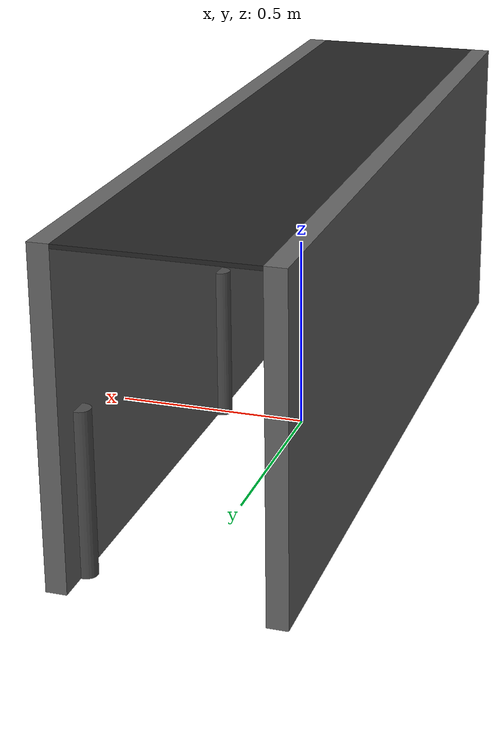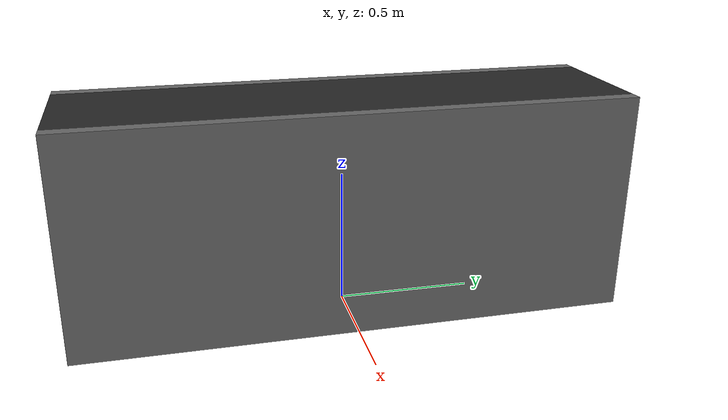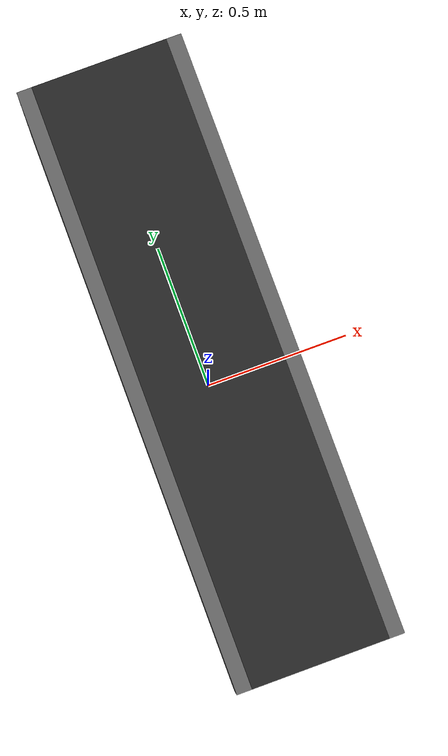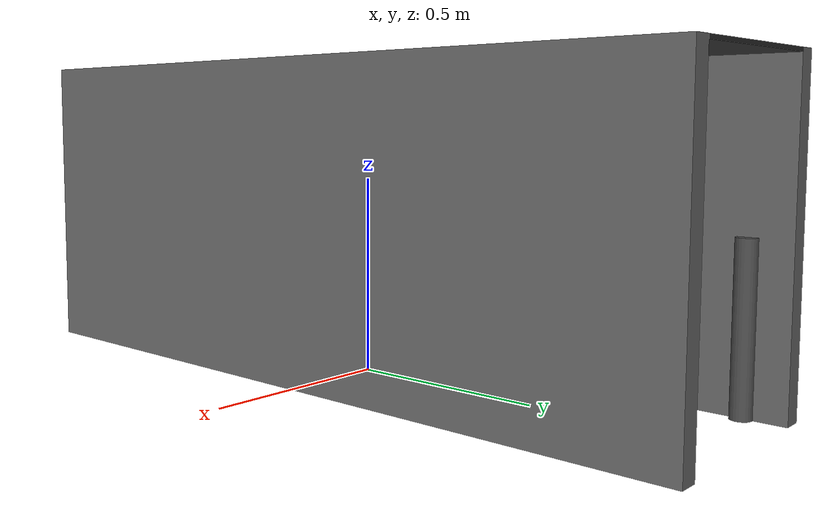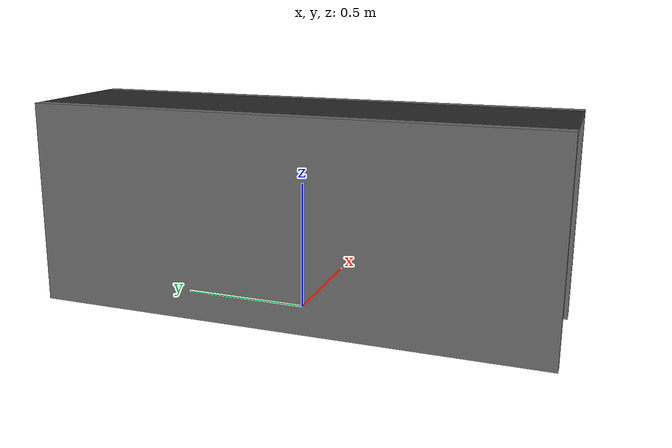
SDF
<?xml version="1.0" ?>
<!--
  2-meter Conveyor Belt for Parallel Multi-Robot Assembly Line
  Length: 2 meters
  Width: 0.45 meters
  Based on IFRA-Cranfield conveyor belt plugin.
-->
<sdf version="1.6">
  <model name="conveyor_belt_2">

    <!-- Static frame/structure of the conveyor -->
    <model name="conveyorbelt_fixed">
      <static>true</static>

      <!-- Main belt structure -->
      <link name="belt_visual">
        <pose>0 0 0 0 0 0</pose>

        <!-- Belt frame - left side -->
        <visual name="frame_left">
          <pose>-0.25 0 0.4 0 0 0</pose>
          <geometry>
            <box>
              <size>0.05 2.0 0.8</size>
            </box>
          </geometry>
          <material>
            <ambient>0.3 0.3 0.3 1</ambient>
            <diffuse>0.4 0.4 0.4 1</diffuse>
          </material>
        </visual>
        <collision name="frame_left_collision">
          <pose>-0.25 0 0.4 0 0 0</pose>
          <geometry>
            <box>
              <size>0.05 2.0 0.8</size>
            </box>
          </geometry>
        </collision>

        <!-- Belt frame - right side -->
        <visual name="frame_right">
          <pose>0.25 0 0.4 0 0 0</pose>
          <geometry>
            <box>
              <size>0.05 2.0 0.8</size>
            </box>
          </geometry>
          <material>
            <ambient>0.3 0.3 0.3 1</ambient>
            <diffuse>0.4 0.4 0.4 1</diffuse>
          </material>
        </visual>
        <collision name="frame_right_collision">
          <pose>0.25 0 0.4 0 0 0</pose>
          <geometry>
            <box>
              <size>0.05 2.0 0.8</size>
            </box>
          </geometry>
        </collision>

        <!-- Legs -->
        <visual name="leg_front_left">
          <pose>-0.22 -0.9 0.2 0 0 0</pose>
          <geometry>
            <cylinder>
              <radius>0.025</radius>
              <length>0.4</length>
            </cylinder>
          </geometry>
          <material>
            <ambient>0.2 0.2 0.2 1</ambient>
            <diffuse>0.3 0.3 0.3 1</diffuse>
          </material>
        </visual>

        <visual name="leg_front_right">
          <pose>0.22 -0.9 0.2 0 0 0</pose>
          <geometry>
            <cylinder>
              <radius>0.025</radius>
              <length>0.4</length>
            </cylinder>
          </geometry>
          <material>
            <ambient>0.2 0.2 0.2 1</ambient>
            <diffuse>0.3 0.3 0.3 1</diffuse>
          </material>
        </visual>

        <visual name="leg_back_left">
          <pose>-0.22 0.9 0.2 0 0 0</pose>
          <geometry>
            <cylinder>
              <radius>0.025</radius>
              <length>0.4</length>
            </cylinder>
          </geometry>
          <material>
            <ambient>0.2 0.2 0.2 1</ambient>
            <diffuse>0.3 0.3 0.3 1</diffuse>
          </material>
        </visual>

        <visual name="leg_back_right">
          <pose>0.22 0.9 0.2 0 0 0</pose>
          <geometry>
            <cylinder>
              <radius>0.025</radius>
              <length>0.4</length>
            </cylinder>
          </geometry>
          <material>
            <ambient>0.2 0.2 0.2 1</ambient>
            <diffuse>0.3 0.3 0.3 1</diffuse>
          </material>
        </visual>

        <!-- Middle legs for support -->
        <visual name="leg_mid_left">
          <pose>-0.22 0 0.2 0 0 0</pose>
          <geometry>
            <cylinder>
              <radius>0.025</radius>
              <length>0.4</length>
            </cylinder>
          </geometry>
          <material>
            <ambient>0.2 0.2 0.2 1</ambient>
            <diffuse>0.3 0.3 0.3 1</diffuse>
          </material>
        </visual>

        <visual name="leg_mid_right">
          <pose>0.22 0 0.2 0 0 0</pose>
          <geometry>
            <cylinder>
              <radius>0.025</radius>
              <length>0.4</length>
            </cylinder>
          </geometry>
          <material>
            <ambient>0.2 0.2 0.2 1</ambient>
            <diffuse>0.3 0.3 0.3 1</diffuse>
          </material>
        </visual>

        <!-- Belt surface visual (static part) -->
        <visual name="belt_surface">
          <pose>0 0 0.795 0 0 0</pose>
          <geometry>
            <box>
              <size>0.45 2.0 0.01</size>
            </box>
          </geometry>
          <material>
            <ambient>0.1 0.1 0.1 1</ambient>
            <diffuse>0.15 0.15 0.15 1</diffuse>
          </material>
        </visual>
      </link>
    </model>

    <!-- Moving belt surface -->
    <model name="conveyorbelt_moving">
      <allow_auto_disable>0</allow_auto_disable>
      <static>false</static>
      <pose>0 0 0.8 0 0 0</pose>

      <link name="belt_moving">
        <inertial>
          <mass>50.0</mass>
          <inertia>
            <ixx>0.0</ixx>
            <ixy>0.0</ixy>
            <ixz>0.0</ixz>
            <iyy>0.0</iyy>
            <iyz>0.0</iyz>
            <izz>0.0</izz>
          </inertia>
        </inertial>

        <collision name="belt_collision">
          <geometry>
            <box>
              <size>0.42 2.0 0.00001</size>
            </box>
          </geometry>
          <surface>
            <friction>
              <ode>
                <mu>100.0</mu>
                <mu2>100.0</mu2>
              </ode>
              <torsional>
                <coefficient>1000.0</coefficient>
                <patch_radius>0.1</patch_radius>
              </torsional>
            </friction>
          </surface>
        </collision>
      </link>
    </model>

    <!-- Joint connecting moving and fixed parts -->
    <joint name="belt_joint" type="prismatic">
      <parent>conveyorbelt_fixed::belt_visual</parent>
      <child>conveyorbelt_moving::belt_moving</child>
      <axis>
        <xyz>0 1 0</xyz>
        <limit>
          <lower>0.0</lower>
          <upper>0.01</upper>
        </limit>
      </axis>
    </joint>

    <!-- ROS2 Conveyor Belt Plugin -->
    <plugin name="ros2_conveyorbelt_plugin" filename="libros2_conveyorbelt_plugin.so">
      <ros>
        <namespace>conveyor_belt_2</namespace>
      </ros>
      <max_velocity>0.5</max_velocity>
      <publish_rate>100</publish_rate>
    </plugin>

  </model>
</sdf>
